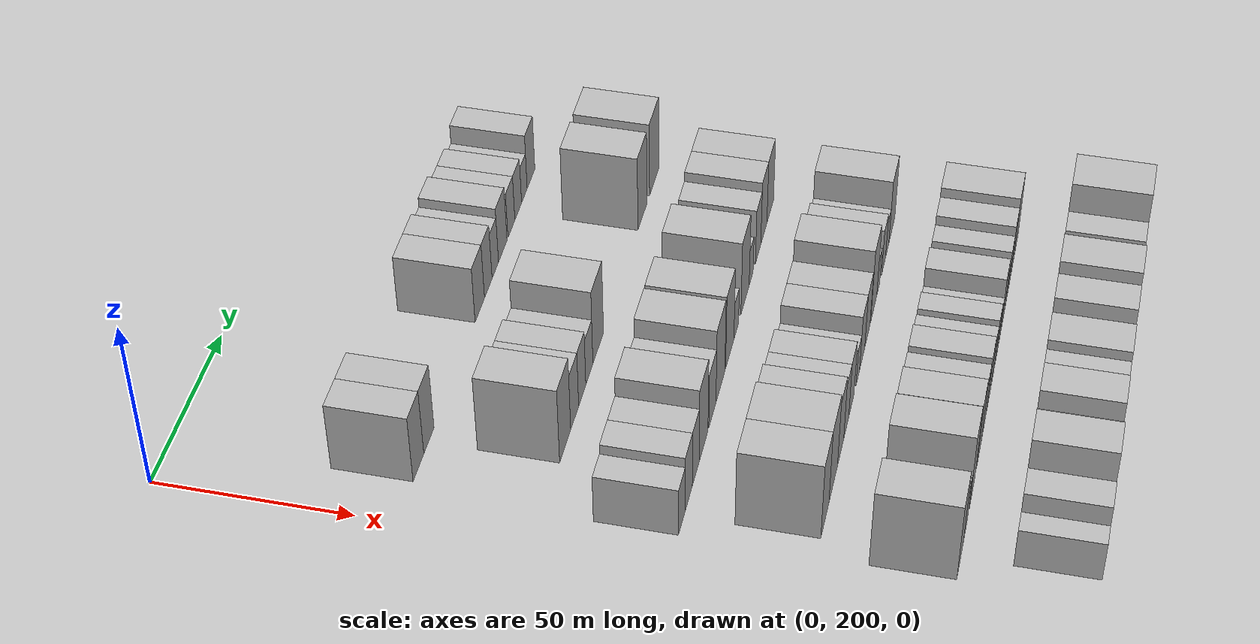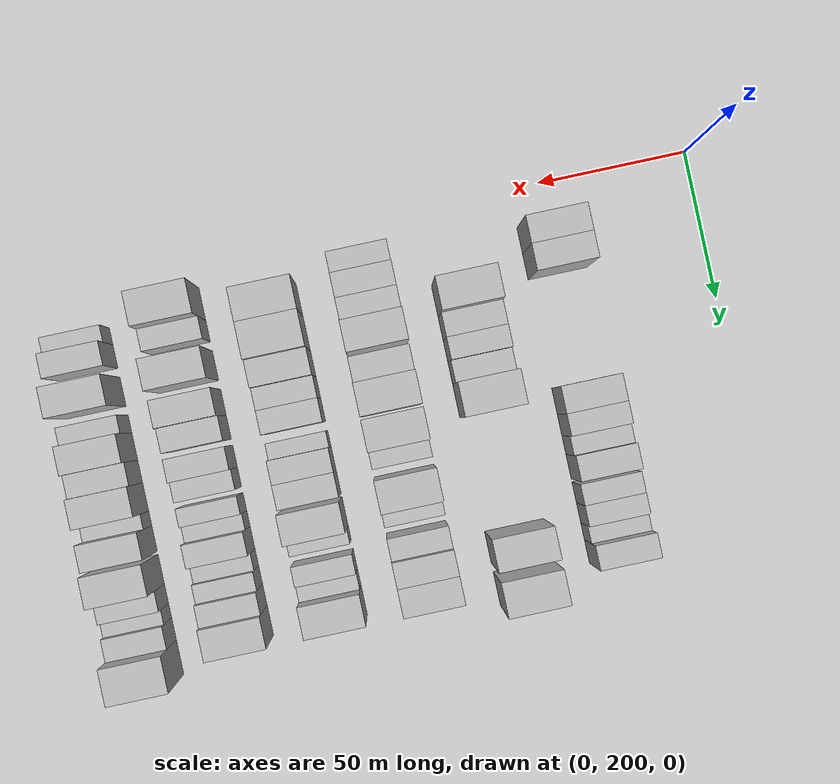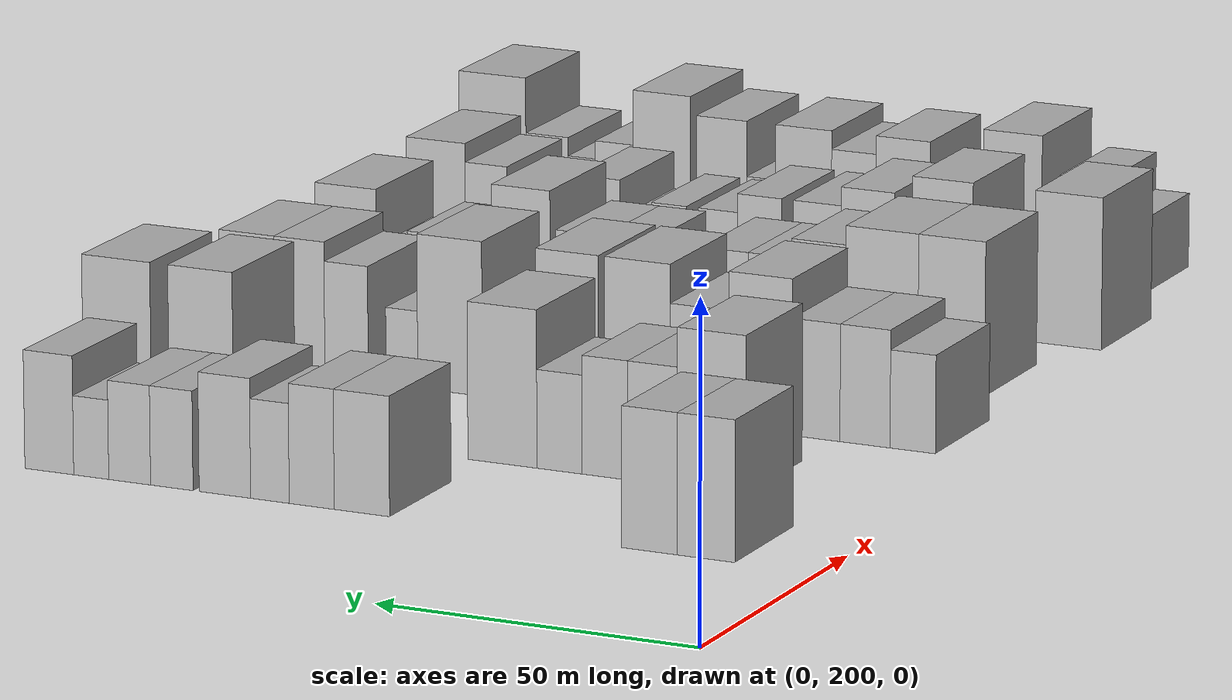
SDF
<sdf version="1.6">
 <world name="default">
  <model name="building_78">
   <static>1</static>
   <pose>50.0000 217.5967 0 0.000000 0.000000 0.000000</pose>
   <link name="link">
    <pose>0 0 10.50 0 0 0</pose>
    <collision name="collision"><geometry><box><size>20.0000 9.0226 21.0000</size></box></geometry></collision>
    <visual name="visual">
     <cast_shadows>0</cast_shadows>
     <geometry><box><size>20.0000 9.0226 21.0000</size></box></geometry>
     <material>
      <script>
       <uri>model://HANNAS_wall/materials/scripts</uri>
       <uri>model://HANNAS_wall/materials/textures</uri>
       <name>vrc/HANNAS_wall</name>
      </script>
     </material>
    </visual>
   </link>
  </model>
  <model name="building_79">
   <static>1</static>
   <pose>50.0000 226.4689 0 0.000000 0.000000 0.000000</pose>
   <link name="link">
    <pose>0 0 10.50 0 0 0</pose>
    <collision name="collision"><geometry><box><size>20.0000 8.7219 21.0000</size></box></geometry></collision>
    <visual name="visual">
     <cast_shadows>0</cast_shadows>
     <geometry><box><size>20.0000 8.7219 21.0000</size></box></geometry>
     <material>
      <script>
       <uri>model://HANNAS_wall/materials/scripts</uri>
       <uri>model://HANNAS_wall/materials/textures</uri>
       <name>vrc/HANNAS_wall</name>
      </script>
     </material>
    </visual>
   </link>
  </model>
  <model name="building_80">
   <static>1</static>
   <pose>50.0000 272.2419 0 0.000000 0.000000 0.000000</pose>
   <link name="link">
    <pose>0 0 9.00 0 0 0</pose>
    <collision name="collision"><geometry><box><size>20.0000 8.9414 18.0000</size></box></geometry></collision>
    <visual name="visual">
     <cast_shadows>0</cast_shadows>
     <geometry><box><size>20.0000 8.9414 18.0000</size></box></geometry>
     <material>
      <script>
       <uri>model://HANNAS_wall/materials/scripts</uri>
       <uri>model://HANNAS_wall/materials/textures</uri>
       <name>vrc/HANNAS_wall</name>
      </script>
     </material>
    </visual>
   </link>
  </model>
  <model name="building_81">
   <static>1</static>
   <pose>50.0000 280.3550 0 0.000000 0.000000 0.000000</pose>
   <link name="link">
    <pose>0 0 9.00 0 0 0</pose>
    <collision name="collision"><geometry><box><size>20.0000 7.2848 18.0000</size></box></geometry></collision>
    <visual name="visual">
     <cast_shadows>0</cast_shadows>
     <geometry><box><size>20.0000 7.2848 18.0000</size></box></geometry>
     <material>
      <script>
       <uri>model://HANNAS_wall/materials/scripts</uri>
       <uri>model://HANNAS_wall/materials/textures</uri>
       <name>vrc/HANNAS_wall</name>
      </script>
     </material>
    </visual>
   </link>
  </model>
  <model name="building_82">
   <static>1</static>
   <pose>50.0000 287.1381 0 0.000000 0.000000 0.000000</pose>
   <link name="link">
    <pose>0 0 7.50 0 0 0</pose>
    <collision name="collision"><geometry><box><size>20.0000 6.2813 15.0000</size></box></geometry></collision>
    <visual name="visual">
     <cast_shadows>0</cast_shadows>
     <geometry><box><size>20.0000 6.2813 15.0000</size></box></geometry>
     <material>
      <script>
       <uri>model://HANNAS_wall/materials/scripts</uri>
       <uri>model://HANNAS_wall/materials/textures</uri>
       <name>vrc/HANNAS_wall</name>
      </script>
     </material>
    </visual>
   </link>
  </model>
  <model name="building_83">
   <static>1</static>
   <pose>50.0000 294.4809 0 0.000000 0.000000 0.000000</pose>
   <link name="link">
    <pose>0 0 9.00 0 0 0</pose>
    <collision name="collision"><geometry><box><size>20.0000 8.4044 18.0000</size></box></geometry></collision>
    <visual name="visual">
     <cast_shadows>0</cast_shadows>
     <geometry><box><size>20.0000 8.4044 18.0000</size></box></geometry>
     <material>
      <script>
       <uri>model://HANNAS_wall/materials/scripts</uri>
       <uri>model://HANNAS_wall/materials/textures</uri>
       <name>vrc/HANNAS_wall</name>
      </script>
     </material>
    </visual>
   </link>
  </model>
  <model name="building_84">
   <static>1</static>
   <pose>50.0000 303.1707 0 0.000000 0.000000 0.000000</pose>
   <link name="link">
    <pose>0 0 7.50 0 0 0</pose>
    <collision name="collision"><geometry><box><size>20.0000 6.9752 15.0000</size></box></geometry></collision>
    <visual name="visual">
     <cast_shadows>0</cast_shadows>
     <geometry><box><size>20.0000 6.9752 15.0000</size></box></geometry>
     <material>
      <script>
       <uri>model://HANNAS_wall/materials/scripts</uri>
       <uri>model://HANNAS_wall/materials/textures</uri>
       <name>vrc/HANNAS_wall</name>
      </script>
     </material>
    </visual>
   </link>
  </model>
  <model name="building_85">
   <static>1</static>
   <pose>50.0000 310.1057 0 0.000000 0.000000 0.000000</pose>
   <link name="link">
    <pose>0 0 7.50 0 0 0</pose>
    <collision name="collision"><geometry><box><size>20.0000 6.8947 15.0000</size></box></geometry></collision>
    <visual name="visual">
     <cast_shadows>0</cast_shadows>
     <geometry><box><size>20.0000 6.8947 15.0000</size></box></geometry>
     <material>
      <script>
       <uri>model://HANNAS_wall/materials/scripts</uri>
       <uri>model://HANNAS_wall/materials/textures</uri>
       <name>vrc/HANNAS_wall</name>
      </script>
     </material>
    </visual>
   </link>
  </model>
  <model name="building_86">
   <static>1</static>
   <pose>50.0000 316.4491 0 0.000000 0.000000 0.000000</pose>
   <link name="link">
    <pose>0 0 6.00 0 0 0</pose>
    <collision name="collision"><geometry><box><size>20.0000 5.7922 12.0000</size></box></geometry></collision>
    <visual name="visual">
     <cast_shadows>0</cast_shadows>
     <geometry><box><size>20.0000 5.7922 12.0000</size></box></geometry>
     <material>
      <script>
       <uri>model://HANNAS_wall/materials/scripts</uri>
       <uri>model://HANNAS_wall/materials/textures</uri>
       <name>vrc/HANNAS_wall</name>
      </script>
     </material>
    </visual>
   </link>
  </model>
  <model name="building_87">
   <static>1</static>
   <pose>50.0000 323.3943 0 0.000000 0.000000 0.000000</pose>
   <link name="link">
    <pose>0 0 9.00 0 0 0</pose>
    <collision name="collision"><geometry><box><size>20.0000 8.0980 18.0000</size></box></geometry></collision>
    <visual name="visual">
     <cast_shadows>0</cast_shadows>
     <geometry><box><size>20.0000 8.0980 18.0000</size></box></geometry>
     <material>
      <script>
       <uri>model://HANNAS_wall/materials/scripts</uri>
       <uri>model://HANNAS_wall/materials/textures</uri>
       <name>vrc/HANNAS_wall</name>
      </script>
     </material>
    </visual>
   </link>
  </model>
  <model name="building_195">
   <static>1</static>
   <pose>82.0000 231.5195 0 0.000000 0.000000 0.000000</pose>
   <link name="link">
    <pose>0 0 12.00 0 0 0</pose>
    <collision name="collision"><geometry><box><size>20.0000 10.8951 24.0000</size></box></geometry></collision>
    <visual name="visual">
     <cast_shadows>0</cast_shadows>
     <geometry><box><size>20.0000 10.8951 24.0000</size></box></geometry>
     <material>
      <script>
       <uri>model://HANNAS_wall/materials/scripts</uri>
       <uri>model://HANNAS_wall/materials/textures</uri>
       <name>vrc/HANNAS_wall</name>
      </script>
     </material>
    </visual>
   </link>
  </model>
  <model name="building_196">
   <static>1</static>
   <pose>82.0000 240.9577 0 0.000000 0.000000 0.000000</pose>
   <link name="link">
    <pose>0 0 9.00 0 0 0</pose>
    <collision name="collision"><geometry><box><size>20.0000 7.9812 18.0000</size></box></geometry></collision>
    <visual name="visual">
     <cast_shadows>0</cast_shadows>
     <geometry><box><size>20.0000 7.9812 18.0000</size></box></geometry>
     <material>
      <script>
       <uri>model://HANNAS_wall/materials/scripts</uri>
       <uri>model://HANNAS_wall/materials/textures</uri>
       <name>vrc/HANNAS_wall</name>
      </script>
     </material>
    </visual>
   </link>
  </model>
  <model name="building_197">
   <static>1</static>
   <pose>82.0000 248.6177 0 0.000000 0.000000 0.000000</pose>
   <link name="link">
    <pose>0 0 9.00 0 0 0</pose>
    <collision name="collision"><geometry><box><size>20.0000 7.3388 18.0000</size></box></geometry></collision>
    <visual name="visual">
     <cast_shadows>0</cast_shadows>
     <geometry><box><size>20.0000 7.3388 18.0000</size></box></geometry>
     <material>
      <script>
       <uri>model://HANNAS_wall/materials/scripts</uri>
       <uri>model://HANNAS_wall/materials/textures</uri>
       <name>vrc/HANNAS_wall</name>
      </script>
     </material>
    </visual>
   </link>
  </model>
  <model name="building_198">
   <static>1</static>
   <pose>82.0000 255.9737 0 0.000000 0.000000 0.000000</pose>
   <link name="link">
    <pose>0 0 7.50 0 0 0</pose>
    <collision name="collision"><geometry><box><size>20.0000 7.3733 15.0000</size></box></geometry></collision>
    <visual name="visual">
     <cast_shadows>0</cast_shadows>
     <geometry><box><size>20.0000 7.3733 15.0000</size></box></geometry>
     <material>
      <script>
       <uri>model://HANNAS_wall/materials/scripts</uri>
       <uri>model://HANNAS_wall/materials/textures</uri>
       <name>vrc/HANNAS_wall</name>
      </script>
     </material>
    </visual>
   </link>
  </model>
  <model name="building_199">
   <static>1</static>
   <pose>82.0000 265.2816 0 0.000000 0.000000 0.000000</pose>
   <link name="link">
    <pose>0 0 12.00 0 0 0</pose>
    <collision name="collision"><geometry><box><size>20.0000 11.2425 24.0000</size></box></geometry></collision>
    <visual name="visual">
     <cast_shadows>0</cast_shadows>
     <geometry><box><size>20.0000 11.2425 24.0000</size></box></geometry>
     <material>
      <script>
       <uri>model://HANNAS_wall/materials/scripts</uri>
       <uri>model://HANNAS_wall/materials/textures</uri>
       <name>vrc/HANNAS_wall</name>
      </script>
     </material>
    </visual>
   </link>
  </model>
  <model name="building_200">
   <static>1</static>
   <pose>82.0000 315.0201 0 0.000000 0.000000 0.000000</pose>
   <link name="link">
    <pose>0 0 12.00 0 0 0</pose>
    <collision name="collision"><geometry><box><size>20.0000 10.7448 24.0000</size></box></geometry></collision>
    <visual name="visual">
     <cast_shadows>0</cast_shadows>
     <geometry><box><size>20.0000 10.7448 24.0000</size></box></geometry>
     <material>
      <script>
       <uri>model://HANNAS_wall/materials/scripts</uri>
       <uri>model://HANNAS_wall/materials/textures</uri>
       <name>vrc/HANNAS_wall</name>
      </script>
     </material>
    </visual>
   </link>
  </model>
  <model name="building_201">
   <static>1</static>
   <pose>82.0000 329.1310 0 0.000000 0.000000 0.000000</pose>
   <link name="link">
    <pose>0 0 12.00 0 0 0</pose>
    <collision name="collision"><geometry><box><size>20.0000 11.4769 24.0000</size></box></geometry></collision>
    <visual name="visual">
     <cast_shadows>0</cast_shadows>
     <geometry><box><size>20.0000 11.4769 24.0000</size></box></geometry>
     <material>
      <script>
       <uri>model://HANNAS_wall/materials/scripts</uri>
       <uri>model://HANNAS_wall/materials/textures</uri>
       <name>vrc/HANNAS_wall</name>
      </script>
     </material>
    </visual>
   </link>
  </model>
  <model name="building_314">
   <static>1</static>
   <pose>114.0000 213.6081 0 0.000000 0.000000 0.000000</pose>
   <link name="link">
    <pose>0 0 7.50 0 0 0</pose>
    <collision name="collision"><geometry><box><size>20.0000 7.3062 15.0000</size></box></geometry></collision>
    <visual name="visual">
     <cast_shadows>0</cast_shadows>
     <geometry><box><size>20.0000 7.3062 15.0000</size></box></geometry>
     <material>
      <script>
       <uri>model://HANNAS_wall/materials/scripts</uri>
       <uri>model://HANNAS_wall/materials/textures</uri>
       <name>vrc/HANNAS_wall</name>
      </script>
     </material>
    </visual>
   </link>
  </model>
  <model name="building_315">
   <static>1</static>
   <pose>114.0000 221.3077 0 0.000000 0.000000 0.000000</pose>
   <link name="link">
    <pose>0 0 9.00 0 0 0</pose>
    <collision name="collision"><geometry><box><size>20.0000 8.0929 18.0000</size></box></geometry></collision>
    <visual name="visual">
     <cast_shadows>0</cast_shadows>
     <geometry><box><size>20.0000 8.0929 18.0000</size></box></geometry>
     <material>
      <script>
       <uri>model://HANNAS_wall/materials/scripts</uri>
       <uri>model://HANNAS_wall/materials/textures</uri>
       <name>vrc/HANNAS_wall</name>
      </script>
     </material>
    </visual>
   </link>
  </model>
  <model name="building_316">
   <static>1</static>
   <pose>114.0000 229.2321 0 0.000000 0.000000 0.000000</pose>
   <link name="link">
    <pose>0 0 9.00 0 0 0</pose>
    <collision name="collision"><geometry><box><size>20.0000 7.7558 18.0000</size></box></geometry></collision>
    <visual name="visual">
     <cast_shadows>0</cast_shadows>
     <geometry><box><size>20.0000 7.7558 18.0000</size></box></geometry>
     <material>
      <script>
       <uri>model://HANNAS_wall/materials/scripts</uri>
       <uri>model://HANNAS_wall/materials/textures</uri>
       <name>vrc/HANNAS_wall</name>
      </script>
     </material>
    </visual>
   </link>
  </model>
  <model name="building_317">
   <static>1</static>
   <pose>114.0000 238.2666 0 0.000000 0.000000 0.000000</pose>
   <link name="link">
    <pose>0 0 12.00 0 0 0</pose>
    <collision name="collision"><geometry><box><size>20.0000 10.3131 24.0000</size></box></geometry></collision>
    <visual name="visual">
     <cast_shadows>0</cast_shadows>
     <geometry><box><size>20.0000 10.3131 24.0000</size></box></geometry>
     <material>
      <script>
       <uri>model://HANNAS_wall/materials/scripts</uri>
       <uri>model://HANNAS_wall/materials/textures</uri>
       <name>vrc/HANNAS_wall</name>
      </script>
     </material>
    </visual>
   </link>
  </model>
  <model name="building_318">
   <static>1</static>
   <pose>114.0000 248.7253 0 0.000000 0.000000 0.000000</pose>
   <link name="link">
    <pose>0 0 9.00 0 0 0</pose>
    <collision name="collision"><geometry><box><size>20.0000 8.6044 18.0000</size></box></geometry></collision>
    <visual name="visual">
     <cast_shadows>0</cast_shadows>
     <geometry><box><size>20.0000 8.6044 18.0000</size></box></geometry>
     <material>
      <script>
       <uri>model://HANNAS_wall/materials/scripts</uri>
       <uri>model://HANNAS_wall/materials/textures</uri>
       <name>vrc/HANNAS_wall</name>
      </script>
     </material>
    </visual>
   </link>
  </model>
  <model name="building_319">
   <static>1</static>
   <pose>114.0000 258.4381 0 0.000000 0.000000 0.000000</pose>
   <link name="link">
    <pose>0 0 12.00 0 0 0</pose>
    <collision name="collision"><geometry><box><size>20.0000 10.8211 24.0000</size></box></geometry></collision>
    <visual name="visual">
     <cast_shadows>0</cast_shadows>
     <geometry><box><size>20.0000 10.8211 24.0000</size></box></geometry>
     <material>
      <script>
       <uri>model://HANNAS_wall/materials/scripts</uri>
       <uri>model://HANNAS_wall/materials/textures</uri>
       <name>vrc/HANNAS_wall</name>
      </script>
     </material>
    </visual>
   </link>
  </model>
  <model name="building_320">
   <static>1</static>
   <pose>114.0000 270.0670 0 0.000000 0.000000 0.000000</pose>
   <link name="link">
    <pose>0 0 12.00 0 0 0</pose>
    <collision name="collision"><geometry><box><size>20.0000 10.4366 24.0000</size></box></geometry></collision>
    <visual name="visual">
     <cast_shadows>0</cast_shadows>
     <geometry><box><size>20.0000 10.4366 24.0000</size></box></geometry>
     <material>
      <script>
       <uri>model://HANNAS_wall/materials/scripts</uri>
       <uri>model://HANNAS_wall/materials/textures</uri>
       <name>vrc/HANNAS_wall</name>
      </script>
     </material>
    </visual>
   </link>
  </model>
  <model name="building_321">
   <static>1</static>
   <pose>114.0000 278.2422 0 0.000000 0.000000 0.000000</pose>
   <link name="link">
    <pose>0 0 6.00 0 0 0</pose>
    <collision name="collision"><geometry><box><size>20.0000 5.9139 12.0000</size></box></geometry></collision>
    <visual name="visual">
     <cast_shadows>0</cast_shadows>
     <geometry><box><size>20.0000 5.9139 12.0000</size></box></geometry>
     <material>
      <script>
       <uri>model://HANNAS_wall/materials/scripts</uri>
       <uri>model://HANNAS_wall/materials/textures</uri>
       <name>vrc/HANNAS_wall</name>
      </script>
     </material>
    </visual>
   </link>
  </model>
  <model name="building_322">
   <static>1</static>
   <pose>114.0000 289.5982 0 0.000000 0.000000 0.000000</pose>
   <link name="link">
    <pose>0 0 12.00 0 0 0</pose>
    <collision name="collision"><geometry><box><size>20.0000 10.7980 24.0000</size></box></geometry></collision>
    <visual name="visual">
     <cast_shadows>0</cast_shadows>
     <geometry><box><size>20.0000 10.7980 24.0000</size></box></geometry>
     <material>
      <script>
       <uri>model://HANNAS_wall/materials/scripts</uri>
       <uri>model://HANNAS_wall/materials/textures</uri>
       <name>vrc/HANNAS_wall</name>
      </script>
     </material>
    </visual>
   </link>
  </model>
  <model name="building_323">
   <static>1</static>
   <pose>114.0000 297.6652 0 0.000000 0.000000 0.000000</pose>
   <link name="link">
    <pose>0 0 6.00 0 0 0</pose>
    <collision name="collision"><geometry><box><size>20.0000 5.3360 12.0000</size></box></geometry></collision>
    <visual name="visual">
     <cast_shadows>0</cast_shadows>
     <geometry><box><size>20.0000 5.3360 12.0000</size></box></geometry>
     <material>
      <script>
       <uri>model://HANNAS_wall/materials/scripts</uri>
       <uri>model://HANNAS_wall/materials/textures</uri>
       <name>vrc/HANNAS_wall</name>
      </script>
     </material>
    </visual>
   </link>
  </model>
  <model name="building_324">
   <static>1</static>
   <pose>114.0000 307.0035 0 0.000000 0.000000 0.000000</pose>
   <link name="link">
    <pose>0 0 9.00 0 0 0</pose>
    <collision name="collision"><geometry><box><size>20.0000 7.3405 18.0000</size></box></geometry></collision>
    <visual name="visual">
     <cast_shadows>0</cast_shadows>
     <geometry><box><size>20.0000 7.3405 18.0000</size></box></geometry>
     <material>
      <script>
       <uri>model://HANNAS_wall/materials/scripts</uri>
       <uri>model://HANNAS_wall/materials/textures</uri>
       <name>vrc/HANNAS_wall</name>
      </script>
     </material>
    </visual>
   </link>
  </model>
  <model name="building_325">
   <static>1</static>
   <pose>114.0000 314.9083 0 0.000000 0.000000 0.000000</pose>
   <link name="link">
    <pose>0 0 10.50 0 0 0</pose>
    <collision name="collision"><geometry><box><size>20.0000 8.4691 21.0000</size></box></geometry></collision>
    <visual name="visual">
     <cast_shadows>0</cast_shadows>
     <geometry><box><size>20.0000 8.4691 21.0000</size></box></geometry>
     <material>
      <script>
       <uri>model://HANNAS_wall/materials/scripts</uri>
       <uri>model://HANNAS_wall/materials/textures</uri>
       <name>vrc/HANNAS_wall</name>
      </script>
     </material>
    </visual>
   </link>
  </model>
  <model name="building_326">
   <static>1</static>
   <pose>114.0000 323.8093 0 0.000000 0.000000 0.000000</pose>
   <link name="link">
    <pose>0 0 10.50 0 0 0</pose>
    <collision name="collision"><geometry><box><size>20.0000 9.3329 21.0000</size></box></geometry></collision>
    <visual name="visual">
     <cast_shadows>0</cast_shadows>
     <geometry><box><size>20.0000 9.3329 21.0000</size></box></geometry>
     <material>
      <script>
       <uri>model://HANNAS_wall/materials/scripts</uri>
       <uri>model://HANNAS_wall/materials/textures</uri>
       <name>vrc/HANNAS_wall</name>
      </script>
     </material>
    </visual>
   </link>
  </model>
  <model name="building_430">
   <static>1</static>
   <pose>146.0000 221.3380 0 0.000000 0.000000 0.000000</pose>
   <link name="link">
    <pose>0 0 12.00 0 0 0</pose>
    <collision name="collision"><geometry><box><size>20.0000 10.9479 24.0000</size></box></geometry></collision>
    <visual name="visual">
     <cast_shadows>0</cast_shadows>
     <geometry><box><size>20.0000 10.9479 24.0000</size></box></geometry>
     <material>
      <script>
       <uri>model://HANNAS_wall/materials/scripts</uri>
       <uri>model://HANNAS_wall/materials/textures</uri>
       <name>vrc/HANNAS_wall</name>
      </script>
     </material>
    </visual>
   </link>
  </model>
  <model name="building_431">
   <static>1</static>
   <pose>146.0000 232.7829 0 0.000000 0.000000 0.000000</pose>
   <link name="link">
    <pose>0 0 12.00 0 0 0</pose>
    <collision name="collision"><geometry><box><size>20.0000 11.9420 24.0000</size></box></geometry></collision>
    <visual name="visual">
     <cast_shadows>0</cast_shadows>
     <geometry><box><size>20.0000 11.9420 24.0000</size></box></geometry>
     <material>
      <script>
       <uri>model://HANNAS_wall/materials/scripts</uri>
       <uri>model://HANNAS_wall/materials/textures</uri>
       <name>vrc/HANNAS_wall</name>
      </script>
     </material>
    </visual>
   </link>
  </model>
  <model name="building_432">
   <static>1</static>
   <pose>146.0000 243.2220 0 0.000000 0.000000 0.000000</pose>
   <link name="link">
    <pose>0 0 10.50 0 0 0</pose>
    <collision name="collision"><geometry><box><size>20.0000 8.9361 21.0000</size></box></geometry></collision>
    <visual name="visual">
     <cast_shadows>0</cast_shadows>
     <geometry><box><size>20.0000 8.9361 21.0000</size></box></geometry>
     <material>
      <script>
       <uri>model://HANNAS_wall/materials/scripts</uri>
       <uri>model://HANNAS_wall/materials/textures</uri>
       <name>vrc/HANNAS_wall</name>
      </script>
     </material>
    </visual>
   </link>
  </model>
  <model name="building_433">
   <static>1</static>
   <pose>146.0000 251.3263 0 0.000000 0.000000 0.000000</pose>
   <link name="link">
    <pose>0 0 9.00 0 0 0</pose>
    <collision name="collision"><geometry><box><size>20.0000 7.2724 18.0000</size></box></geometry></collision>
    <visual name="visual">
     <cast_shadows>0</cast_shadows>
     <geometry><box><size>20.0000 7.2724 18.0000</size></box></geometry>
     <material>
      <script>
       <uri>model://HANNAS_wall/materials/scripts</uri>
       <uri>model://HANNAS_wall/materials/textures</uri>
       <name>vrc/HANNAS_wall</name>
      </script>
     </material>
    </visual>
   </link>
  </model>
  <model name="building_434">
   <static>1</static>
   <pose>146.0000 258.8698 0 0.000000 0.000000 0.000000</pose>
   <link name="link">
    <pose>0 0 9.00 0 0 0</pose>
    <collision name="collision"><geometry><box><size>20.0000 7.8147 18.0000</size></box></geometry></collision>
    <visual name="visual">
     <cast_shadows>0</cast_shadows>
     <geometry><box><size>20.0000 7.8147 18.0000</size></box></geometry>
     <material>
      <script>
       <uri>model://HANNAS_wall/materials/scripts</uri>
       <uri>model://HANNAS_wall/materials/textures</uri>
       <name>vrc/HANNAS_wall</name>
      </script>
     </material>
    </visual>
   </link>
  </model>
  <model name="building_435">
   <static>1</static>
   <pose>146.0000 268.4802 0 0.000000 0.000000 0.000000</pose>
   <link name="link">
    <pose>0 0 6.00 0 0 0</pose>
    <collision name="collision"><geometry><box><size>20.0000 5.4060 12.0000</size></box></geometry></collision>
    <visual name="visual">
     <cast_shadows>0</cast_shadows>
     <geometry><box><size>20.0000 5.4060 12.0000</size></box></geometry>
     <material>
      <script>
       <uri>model://HANNAS_wall/materials/scripts</uri>
       <uri>model://HANNAS_wall/materials/textures</uri>
       <name>vrc/HANNAS_wall</name>
      </script>
     </material>
    </visual>
   </link>
  </model>
  <model name="building_436">
   <static>1</static>
   <pose>146.0000 275.1524 0 0.000000 0.000000 0.000000</pose>
   <link name="link">
    <pose>0 0 9.00 0 0 0</pose>
    <collision name="collision"><geometry><box><size>20.0000 7.9383 18.0000</size></box></geometry></collision>
    <visual name="visual">
     <cast_shadows>0</cast_shadows>
     <geometry><box><size>20.0000 7.9383 18.0000</size></box></geometry>
     <material>
      <script>
       <uri>model://HANNAS_wall/materials/scripts</uri>
       <uri>model://HANNAS_wall/materials/textures</uri>
       <name>vrc/HANNAS_wall</name>
      </script>
     </material>
    </visual>
   </link>
  </model>
  <model name="building_437">
   <static>1</static>
   <pose>146.0000 283.1827 0 0.000000 0.000000 0.000000</pose>
   <link name="link">
    <pose>0 0 9.00 0 0 0</pose>
    <collision name="collision"><geometry><box><size>20.0000 8.1222 18.0000</size></box></geometry></collision>
    <visual name="visual">
     <cast_shadows>0</cast_shadows>
     <geometry><box><size>20.0000 8.1222 18.0000</size></box></geometry>
     <material>
      <script>
       <uri>model://HANNAS_wall/materials/scripts</uri>
       <uri>model://HANNAS_wall/materials/textures</uri>
       <name>vrc/HANNAS_wall</name>
      </script>
     </material>
    </visual>
   </link>
  </model>
  <model name="building_438">
   <static>1</static>
   <pose>146.0000 293.2060 0 0.000000 0.000000 0.000000</pose>
   <link name="link">
    <pose>0 0 12.00 0 0 0</pose>
    <collision name="collision"><geometry><box><size>20.0000 9.9245 24.0000</size></box></geometry></collision>
    <visual name="visual">
     <cast_shadows>0</cast_shadows>
     <geometry><box><size>20.0000 9.9245 24.0000</size></box></geometry>
     <material>
      <script>
       <uri>model://HANNAS_wall/materials/scripts</uri>
       <uri>model://HANNAS_wall/materials/textures</uri>
       <name>vrc/HANNAS_wall</name>
      </script>
     </material>
    </visual>
   </link>
  </model>
  <model name="building_439">
   <static>1</static>
   <pose>146.0000 300.5884 0 0.000000 0.000000 0.000000</pose>
   <link name="link">
    <pose>0 0 6.00 0 0 0</pose>
    <collision name="collision"><geometry><box><size>20.0000 4.8402 12.0000</size></box></geometry></collision>
    <visual name="visual">
     <cast_shadows>0</cast_shadows>
     <geometry><box><size>20.0000 4.8402 12.0000</size></box></geometry>
     <material>
      <script>
       <uri>model://HANNAS_wall/materials/scripts</uri>
       <uri>model://HANNAS_wall/materials/textures</uri>
       <name>vrc/HANNAS_wall</name>
      </script>
     </material>
    </visual>
   </link>
  </model>
  <model name="building_440">
   <static>1</static>
   <pose>146.0000 309.2910 0 0.000000 0.000000 0.000000</pose>
   <link name="link">
    <pose>0 0 7.50 0 0 0</pose>
    <collision name="collision"><geometry><box><size>20.0000 6.5651 15.0000</size></box></geometry></collision>
    <visual name="visual">
     <cast_shadows>0</cast_shadows>
     <geometry><box><size>20.0000 6.5651 15.0000</size></box></geometry>
     <material>
      <script>
       <uri>model://HANNAS_wall/materials/scripts</uri>
       <uri>model://HANNAS_wall/materials/textures</uri>
       <name>vrc/HANNAS_wall</name>
      </script>
     </material>
    </visual>
   </link>
  </model>
  <model name="building_441">
   <static>1</static>
   <pose>146.0000 315.2784 0 0.000000 0.000000 0.000000</pose>
   <link name="link">
    <pose>0 0 6.00 0 0 0</pose>
    <collision name="collision"><geometry><box><size>20.0000 5.4096 12.0000</size></box></geometry></collision>
    <visual name="visual">
     <cast_shadows>0</cast_shadows>
     <geometry><box><size>20.0000 5.4096 12.0000</size></box></geometry>
     <material>
      <script>
       <uri>model://HANNAS_wall/materials/scripts</uri>
       <uri>model://HANNAS_wall/materials/textures</uri>
       <name>vrc/HANNAS_wall</name>
      </script>
     </material>
    </visual>
   </link>
  </model>
  <model name="building_442">
   <static>1</static>
   <pose>146.0000 323.2146 0 0.000000 0.000000 0.000000</pose>
   <link name="link">
    <pose>0 0 10.50 0 0 0</pose>
    <collision name="collision"><geometry><box><size>20.0000 10.4629 21.0000</size></box></geometry></collision>
    <visual name="visual">
     <cast_shadows>0</cast_shadows>
     <geometry><box><size>20.0000 10.4629 21.0000</size></box></geometry>
     <material>
      <script>
       <uri>model://HANNAS_wall/materials/scripts</uri>
       <uri>model://HANNAS_wall/materials/textures</uri>
       <name>vrc/HANNAS_wall</name>
      </script>
     </material>
    </visual>
   </link>
  </model>
  <model name="building_551">
   <static>1</static>
   <pose>178.0000 215.7713 0 0.000000 0.000000 0.000000</pose>
   <link name="link">
    <pose>0 0 12.00 0 0 0</pose>
    <collision name="collision"><geometry><box><size>20.0000 11.1090 24.0000</size></box></geometry></collision>
    <visual name="visual">
     <cast_shadows>0</cast_shadows>
     <geometry><box><size>20.0000 11.1090 24.0000</size></box></geometry>
     <material>
      <script>
       <uri>model://HANNAS_wall/materials/scripts</uri>
       <uri>model://HANNAS_wall/materials/textures</uri>
       <name>vrc/HANNAS_wall</name>
      </script>
     </material>
    </visual>
   </link>
  </model>
  <model name="building_552">
   <static>1</static>
   <pose>178.0000 225.0088 0 0.000000 0.000000 0.000000</pose>
   <link name="link">
    <pose>0 0 7.50 0 0 0</pose>
    <collision name="collision"><geometry><box><size>20.0000 7.3660 15.0000</size></box></geometry></collision>
    <visual name="visual">
     <cast_shadows>0</cast_shadows>
     <geometry><box><size>20.0000 7.3660 15.0000</size></box></geometry>
     <material>
      <script>
       <uri>model://HANNAS_wall/materials/scripts</uri>
       <uri>model://HANNAS_wall/materials/textures</uri>
       <name>vrc/HANNAS_wall</name>
      </script>
     </material>
    </visual>
   </link>
  </model>
  <model name="building_553">
   <static>1</static>
   <pose>178.0000 236.7641 0 0.000000 0.000000 0.000000</pose>
   <link name="link">
    <pose>0 0 12.00 0 0 0</pose>
    <collision name="collision"><geometry><box><size>20.0000 10.1446 24.0000</size></box></geometry></collision>
    <visual name="visual">
     <cast_shadows>0</cast_shadows>
     <geometry><box><size>20.0000 10.1446 24.0000</size></box></geometry>
     <material>
      <script>
       <uri>model://HANNAS_wall/materials/scripts</uri>
       <uri>model://HANNAS_wall/materials/textures</uri>
       <name>vrc/HANNAS_wall</name>
      </script>
     </material>
    </visual>
   </link>
  </model>
  <model name="building_554">
   <static>1</static>
   <pose>178.0000 249.3313 0 0.000000 0.000000 0.000000</pose>
   <link name="link">
    <pose>0 0 10.50 0 0 0</pose>
    <collision name="collision"><geometry><box><size>20.0000 8.9897 21.0000</size></box></geometry></collision>
    <visual name="visual">
     <cast_shadows>0</cast_shadows>
     <geometry><box><size>20.0000 8.9897 21.0000</size></box></geometry>
     <material>
      <script>
       <uri>model://HANNAS_wall/materials/scripts</uri>
       <uri>model://HANNAS_wall/materials/textures</uri>
       <name>vrc/HANNAS_wall</name>
      </script>
     </material>
    </visual>
   </link>
  </model>
  <model name="building_555">
   <static>1</static>
   <pose>178.0000 257.8404 0 0.000000 0.000000 0.000000</pose>
   <link name="link">
    <pose>0 0 9.00 0 0 0</pose>
    <collision name="collision"><geometry><box><size>20.0000 8.0285 18.0000</size></box></geometry></collision>
    <visual name="visual">
     <cast_shadows>0</cast_shadows>
     <geometry><box><size>20.0000 8.0285 18.0000</size></box></geometry>
     <material>
      <script>
       <uri>model://HANNAS_wall/materials/scripts</uri>
       <uri>model://HANNAS_wall/materials/textures</uri>
       <name>vrc/HANNAS_wall</name>
      </script>
     </material>
    </visual>
   </link>
  </model>
  <model name="building_556">
   <static>1</static>
   <pose>178.0000 267.6201 0 0.000000 0.000000 0.000000</pose>
   <link name="link">
    <pose>0 0 9.00 0 0 0</pose>
    <collision name="collision"><geometry><box><size>20.0000 7.5308 18.0000</size></box></geometry></collision>
    <visual name="visual">
     <cast_shadows>0</cast_shadows>
     <geometry><box><size>20.0000 7.5308 18.0000</size></box></geometry>
     <material>
      <script>
       <uri>model://HANNAS_wall/materials/scripts</uri>
       <uri>model://HANNAS_wall/materials/textures</uri>
       <name>vrc/HANNAS_wall</name>
      </script>
     </material>
    </visual>
   </link>
  </model>
  <model name="building_557">
   <static>1</static>
   <pose>178.0000 274.7276 0 0.000000 0.000000 0.000000</pose>
   <link name="link">
    <pose>0 0 7.50 0 0 0</pose>
    <collision name="collision"><geometry><box><size>20.0000 6.6843 15.0000</size></box></geometry></collision>
    <visual name="visual">
     <cast_shadows>0</cast_shadows>
     <geometry><box><size>20.0000 6.6843 15.0000</size></box></geometry>
     <material>
      <script>
       <uri>model://HANNAS_wall/materials/scripts</uri>
       <uri>model://HANNAS_wall/materials/textures</uri>
       <name>vrc/HANNAS_wall</name>
      </script>
     </material>
    </visual>
   </link>
  </model>
  <model name="building_558">
   <static>1</static>
   <pose>178.0000 283.0981 0 0.000000 0.000000 0.000000</pose>
   <link name="link">
    <pose>0 0 7.50 0 0 0</pose>
    <collision name="collision"><geometry><box><size>20.0000 6.0567 15.0000</size></box></geometry></collision>
    <visual name="visual">
     <cast_shadows>0</cast_shadows>
     <geometry><box><size>20.0000 6.0567 15.0000</size></box></geometry>
     <material>
      <script>
       <uri>model://HANNAS_wall/materials/scripts</uri>
       <uri>model://HANNAS_wall/materials/textures</uri>
       <name>vrc/HANNAS_wall</name>
      </script>
     </material>
    </visual>
   </link>
  </model>
  <model name="building_559">
   <static>1</static>
   <pose>178.0000 288.8239 0 0.000000 0.000000 0.000000</pose>
   <link name="link">
    <pose>0 0 6.00 0 0 0</pose>
    <collision name="collision"><geometry><box><size>20.0000 5.3948 12.0000</size></box></geometry></collision>
    <visual name="visual">
     <cast_shadows>0</cast_shadows>
     <geometry><box><size>20.0000 5.3948 12.0000</size></box></geometry>
     <material>
      <script>
       <uri>model://HANNAS_wall/materials/scripts</uri>
       <uri>model://HANNAS_wall/materials/textures</uri>
       <name>vrc/HANNAS_wall</name>
      </script>
     </material>
    </visual>
   </link>
  </model>
  <model name="building_560">
   <static>1</static>
   <pose>178.0000 295.3652 0 0.000000 0.000000 0.000000</pose>
   <link name="link">
    <pose>0 0 9.00 0 0 0</pose>
    <collision name="collision"><geometry><box><size>20.0000 7.6879 18.0000</size></box></geometry></collision>
    <visual name="visual">
     <cast_shadows>0</cast_shadows>
     <geometry><box><size>20.0000 7.6879 18.0000</size></box></geometry>
     <material>
      <script>
       <uri>model://HANNAS_wall/materials/scripts</uri>
       <uri>model://HANNAS_wall/materials/textures</uri>
       <name>vrc/HANNAS_wall</name>
      </script>
     </material>
    </visual>
   </link>
  </model>
  <model name="building_561">
   <static>1</static>
   <pose>178.0000 302.0508 0 0.000000 0.000000 0.000000</pose>
   <link name="link">
    <pose>0 0 6.00 0 0 0</pose>
    <collision name="collision"><geometry><box><size>20.0000 5.6835 12.0000</size></box></geometry></collision>
    <visual name="visual">
     <cast_shadows>0</cast_shadows>
     <geometry><box><size>20.0000 5.6835 12.0000</size></box></geometry>
     <material>
      <script>
       <uri>model://HANNAS_wall/materials/scripts</uri>
       <uri>model://HANNAS_wall/materials/textures</uri>
       <name>vrc/HANNAS_wall</name>
      </script>
     </material>
    </visual>
   </link>
  </model>
  <model name="building_562">
   <static>1</static>
   <pose>178.0000 307.9801 0 0.000000 0.000000 0.000000</pose>
   <link name="link">
    <pose>0 0 7.50 0 0 0</pose>
    <collision name="collision"><geometry><box><size>20.0000 6.1750 15.0000</size></box></geometry></collision>
    <visual name="visual">
     <cast_shadows>0</cast_shadows>
     <geometry><box><size>20.0000 6.1750 15.0000</size></box></geometry>
     <material>
      <script>
       <uri>model://HANNAS_wall/materials/scripts</uri>
       <uri>model://HANNAS_wall/materials/textures</uri>
       <name>vrc/HANNAS_wall</name>
      </script>
     </material>
    </visual>
   </link>
  </model>
  <model name="building_563">
   <static>1</static>
   <pose>178.0000 314.7220 0 0.000000 0.000000 0.000000</pose>
   <link name="link">
    <pose>0 0 9.00 0 0 0</pose>
    <collision name="collision"><geometry><box><size>20.0000 7.3090 18.0000</size></box></geometry></collision>
    <visual name="visual">
     <cast_shadows>0</cast_shadows>
     <geometry><box><size>20.0000 7.3090 18.0000</size></box></geometry>
     <material>
      <script>
       <uri>model://HANNAS_wall/materials/scripts</uri>
       <uri>model://HANNAS_wall/materials/textures</uri>
       <name>vrc/HANNAS_wall</name>
      </script>
     </material>
    </visual>
   </link>
  </model>
  <model name="building_564">
   <static>1</static>
   <pose>178.0000 323.5144 0 0.000000 0.000000 0.000000</pose>
   <link name="link">
    <pose>0 0 10.50 0 0 0</pose>
    <collision name="collision"><geometry><box><size>20.0000 10.2757 21.0000</size></box></geometry></collision>
    <visual name="visual">
     <cast_shadows>0</cast_shadows>
     <geometry><box><size>20.0000 10.2757 21.0000</size></box></geometry>
     <material>
      <script>
       <uri>model://HANNAS_wall/materials/scripts</uri>
       <uri>model://HANNAS_wall/materials/textures</uri>
       <name>vrc/HANNAS_wall</name>
      </script>
     </material>
    </visual>
   </link>
  </model>
  <model name="building_674">
   <static>1</static>
   <pose>210.0000 219.8583 0 0.000000 0.000000 0.000000</pose>
   <link name="link">
    <pose>0 0 6.00 0 0 0</pose>
    <collision name="collision"><geometry><box><size>20.0000 5.7131 12.0000</size></box></geometry></collision>
    <visual name="visual">
     <cast_shadows>0</cast_shadows>
     <geometry><box><size>20.0000 5.7131 12.0000</size></box></geometry>
     <material>
      <script>
       <uri>model://HANNAS_wall/materials/scripts</uri>
       <uri>model://HANNAS_wall/materials/textures</uri>
       <name>vrc/HANNAS_wall</name>
      </script>
     </material>
    </visual>
   </link>
  </model>
  <model name="building_675">
   <static>1</static>
   <pose>210.0000 226.7361 0 0.000000 0.000000 0.000000</pose>
   <link name="link">
    <pose>0 0 9.00 0 0 0</pose>
    <collision name="collision"><geometry><box><size>20.0000 8.0425 18.0000</size></box></geometry></collision>
    <visual name="visual">
     <cast_shadows>0</cast_shadows>
     <geometry><box><size>20.0000 8.0425 18.0000</size></box></geometry>
     <material>
      <script>
       <uri>model://HANNAS_wall/materials/scripts</uri>
       <uri>model://HANNAS_wall/materials/textures</uri>
       <name>vrc/HANNAS_wall</name>
      </script>
     </material>
    </visual>
   </link>
  </model>
  <model name="building_676">
   <static>1</static>
   <pose>210.0000 238.7317 0 0.000000 0.000000 0.000000</pose>
   <link name="link">
    <pose>0 0 12.00 0 0 0</pose>
    <collision name="collision"><geometry><box><size>20.0000 9.9487 24.0000</size></box></geometry></collision>
    <visual name="visual">
     <cast_shadows>0</cast_shadows>
     <geometry><box><size>20.0000 9.9487 24.0000</size></box></geometry>
     <material>
      <script>
       <uri>model://HANNAS_wall/materials/scripts</uri>
       <uri>model://HANNAS_wall/materials/textures</uri>
       <name>vrc/HANNAS_wall</name>
      </script>
     </material>
    </visual>
   </link>
  </model>
  <model name="building_677">
   <static>1</static>
   <pose>210.0000 249.7308 0 0.000000 0.000000 0.000000</pose>
   <link name="link">
    <pose>0 0 7.50 0 0 0</pose>
    <collision name="collision"><geometry><box><size>20.0000 6.0494 15.0000</size></box></geometry></collision>
    <visual name="visual">
     <cast_shadows>0</cast_shadows>
     <geometry><box><size>20.0000 6.0494 15.0000</size></box></geometry>
     <material>
      <script>
       <uri>model://HANNAS_wall/materials/scripts</uri>
       <uri>model://HANNAS_wall/materials/textures</uri>
       <name>vrc/HANNAS_wall</name>
      </script>
     </material>
    </visual>
   </link>
  </model>
  <model name="building_678">
   <static>1</static>
   <pose>210.0000 257.4154 0 0.000000 0.000000 0.000000</pose>
   <link name="link">
    <pose>0 0 10.50 0 0 0</pose>
    <collision name="collision"><geometry><box><size>20.0000 9.3198 21.0000</size></box></geometry></collision>
    <visual name="visual">
     <cast_shadows>0</cast_shadows>
     <geometry><box><size>20.0000 9.3198 21.0000</size></box></geometry>
     <material>
      <script>
       <uri>model://HANNAS_wall/materials/scripts</uri>
       <uri>model://HANNAS_wall/materials/textures</uri>
       <name>vrc/HANNAS_wall</name>
      </script>
     </material>
    </visual>
   </link>
  </model>
  <model name="building_679">
   <static>1</static>
   <pose>210.0000 265.8969 0 0.000000 0.000000 0.000000</pose>
   <link name="link">
    <pose>0 0 9.00 0 0 0</pose>
    <collision name="collision"><geometry><box><size>20.0000 7.6432 18.0000</size></box></geometry></collision>
    <visual name="visual">
     <cast_shadows>0</cast_shadows>
     <geometry><box><size>20.0000 7.6432 18.0000</size></box></geometry>
     <material>
      <script>
       <uri>model://HANNAS_wall/materials/scripts</uri>
       <uri>model://HANNAS_wall/materials/textures</uri>
       <name>vrc/HANNAS_wall</name>
      </script>
     </material>
    </visual>
   </link>
  </model>
  <model name="building_680">
   <static>1</static>
   <pose>210.0000 274.5748 0 0.000000 0.000000 0.000000</pose>
   <link name="link">
    <pose>0 0 10.50 0 0 0</pose>
    <collision name="collision"><geometry><box><size>20.0000 9.7126 21.0000</size></box></geometry></collision>
    <visual name="visual">
     <cast_shadows>0</cast_shadows>
     <geometry><box><size>20.0000 9.7126 21.0000</size></box></geometry>
     <material>
      <script>
       <uri>model://HANNAS_wall/materials/scripts</uri>
       <uri>model://HANNAS_wall/materials/textures</uri>
       <name>vrc/HANNAS_wall</name>
      </script>
     </material>
    </visual>
   </link>
  </model>
  <model name="building_681">
   <static>1</static>
   <pose>210.0000 281.9228 0 0.000000 0.000000 0.000000</pose>
   <link name="link">
    <pose>0 0 6.00 0 0 0</pose>
    <collision name="collision"><geometry><box><size>20.0000 4.9835 12.0000</size></box></geometry></collision>
    <visual name="visual">
     <cast_shadows>0</cast_shadows>
     <geometry><box><size>20.0000 4.9835 12.0000</size></box></geometry>
     <material>
      <script>
       <uri>model://HANNAS_wall/materials/scripts</uri>
       <uri>model://HANNAS_wall/materials/textures</uri>
       <name>vrc/HANNAS_wall</name>
      </script>
     </material>
    </visual>
   </link>
  </model>
  <model name="building_682">
   <static>1</static>
   <pose>210.0000 288.8142 0 0.000000 0.000000 0.000000</pose>
   <link name="link">
    <pose>0 0 10.50 0 0 0</pose>
    <collision name="collision"><geometry><box><size>20.0000 8.7991 21.0000</size></box></geometry></collision>
    <visual name="visual">
     <cast_shadows>0</cast_shadows>
     <geometry><box><size>20.0000 8.7991 21.0000</size></box></geometry>
     <material>
      <script>
       <uri>model://HANNAS_wall/materials/scripts</uri>
       <uri>model://HANNAS_wall/materials/textures</uri>
       <name>vrc/HANNAS_wall</name>
      </script>
     </material>
    </visual>
   </link>
  </model>
  <model name="building_683">
   <static>1</static>
   <pose>210.0000 299.2765 0 0.000000 0.000000 0.000000</pose>
   <link name="link">
    <pose>0 0 12.00 0 0 0</pose>
    <collision name="collision"><geometry><box><size>20.0000 10.1255 24.0000</size></box></geometry></collision>
    <visual name="visual">
     <cast_shadows>0</cast_shadows>
     <geometry><box><size>20.0000 10.1255 24.0000</size></box></geometry>
     <material>
      <script>
       <uri>model://HANNAS_wall/materials/scripts</uri>
       <uri>model://HANNAS_wall/materials/textures</uri>
       <name>vrc/HANNAS_wall</name>
      </script>
     </material>
    </visual>
   </link>
  </model>
  <model name="building_684">
   <static>1</static>
   <pose>210.0000 307.6486 0 0.000000 0.000000 0.000000</pose>
   <link name="link">
    <pose>0 0 7.50 0 0 0</pose>
    <collision name="collision"><geometry><box><size>20.0000 6.6186 15.0000</size></box></geometry></collision>
    <visual name="visual">
     <cast_shadows>0</cast_shadows>
     <geometry><box><size>20.0000 6.6186 15.0000</size></box></geometry>
     <material>
      <script>
       <uri>model://HANNAS_wall/materials/scripts</uri>
       <uri>model://HANNAS_wall/materials/textures</uri>
       <name>vrc/HANNAS_wall</name>
      </script>
     </material>
    </visual>
   </link>
  </model>
  <model name="building_685">
   <static>1</static>
   <pose>210.0000 313.3620 0 0.000000 0.000000 0.000000</pose>
   <link name="link">
    <pose>0 0 6.00 0 0 0</pose>
    <collision name="collision"><geometry><box><size>20.0000 4.8082 12.0000</size></box></geometry></collision>
    <visual name="visual">
     <cast_shadows>0</cast_shadows>
     <geometry><box><size>20.0000 4.8082 12.0000</size></box></geometry>
     <material>
      <script>
       <uri>model://HANNAS_wall/materials/scripts</uri>
       <uri>model://HANNAS_wall/materials/textures</uri>
       <name>vrc/HANNAS_wall</name>
      </script>
     </material>
    </visual>
   </link>
  </model>
  <model name="building_686">
   <static>1</static>
   <pose>210.0000 319.5090 0 0.000000 0.000000 0.000000</pose>
   <link name="link">
    <pose>0 0 7.50 0 0 0</pose>
    <collision name="collision"><geometry><box><size>20.0000 7.4858 15.0000</size></box></geometry></collision>
    <visual name="visual">
     <cast_shadows>0</cast_shadows>
     <geometry><box><size>20.0000 7.4858 15.0000</size></box></geometry>
     <material>
      <script>
       <uri>model://HANNAS_wall/materials/scripts</uri>
       <uri>model://HANNAS_wall/materials/textures</uri>
       <name>vrc/HANNAS_wall</name>
      </script>
     </material>
    </visual>
   </link>
  </model>
  <model name="building_687">
   <static>1</static>
   <pose>210.0000 329.1918 0 0.000000 0.000000 0.000000</pose>
   <link name="link">
    <pose>0 0 12.00 0 0 0</pose>
    <collision name="collision"><geometry><box><size>20.0000 11.8798 24.0000</size></box></geometry></collision>
    <visual name="visual">
     <cast_shadows>0</cast_shadows>
     <geometry><box><size>20.0000 11.8798 24.0000</size></box></geometry>
     <material>
      <script>
       <uri>model://HANNAS_wall/materials/scripts</uri>
       <uri>model://HANNAS_wall/materials/textures</uri>
       <name>vrc/HANNAS_wall</name>
      </script>
     </material>
    </visual>
   </link>
  </model>
 </world>
</sdf>
